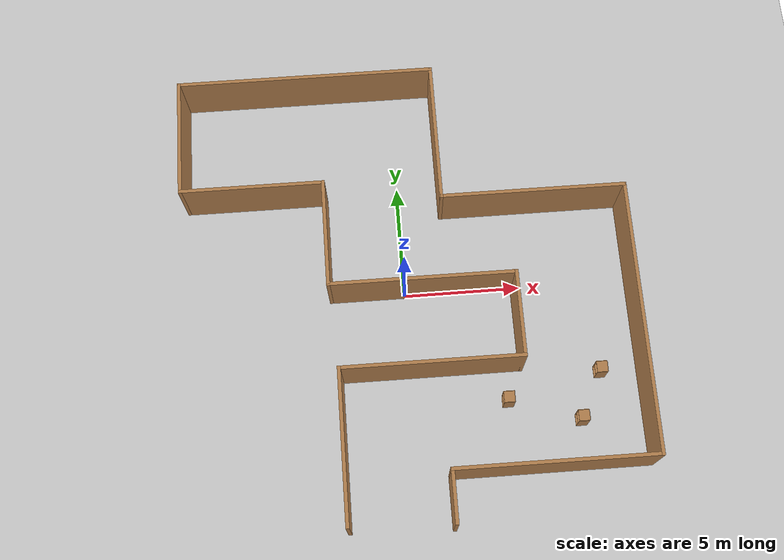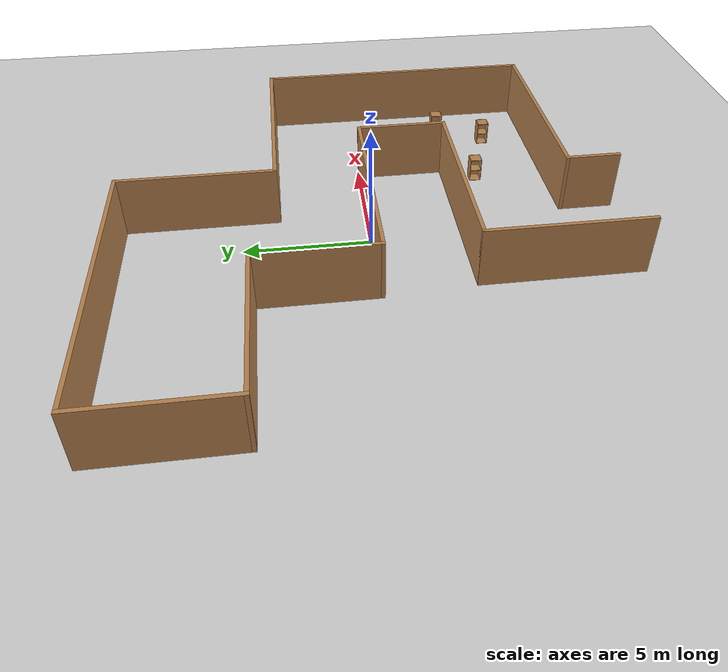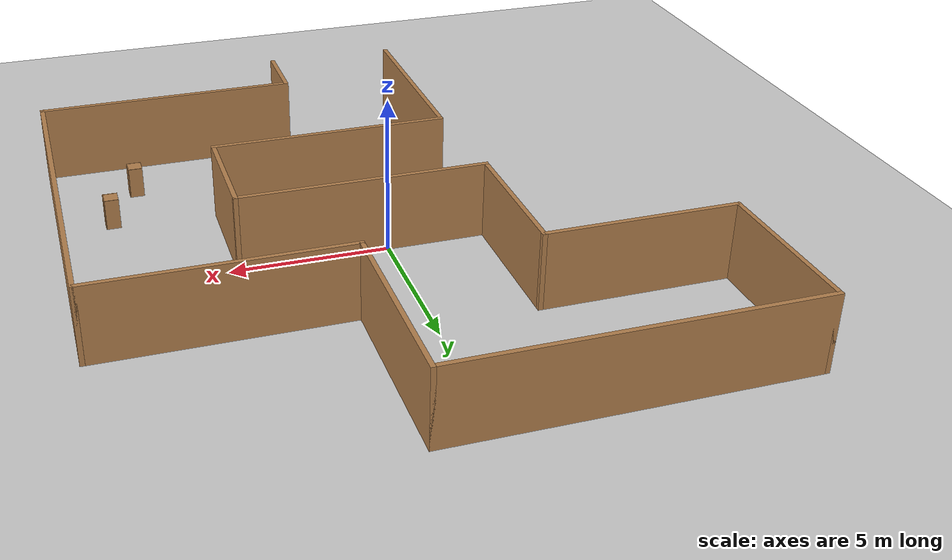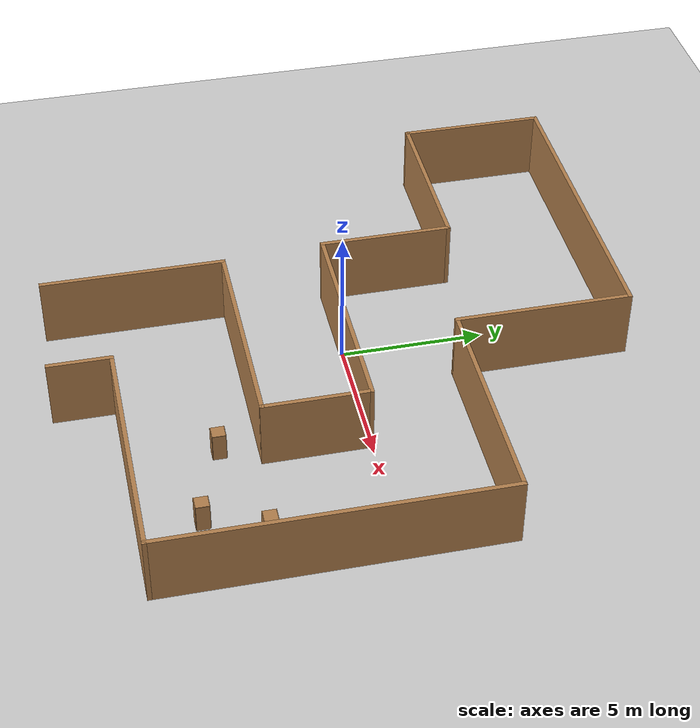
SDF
<sdf version="1.6">
 <world name="default">
  <light name="sun" type="directional">
   <pose>0 0 10 0 -0 0</pose>
   <diffuse>0.8 0.8 0.8 1</diffuse>
   <specular>0.2 0.2 0.2 1</specular>
   <attenuation>
    <range>1000</range>
    <constant>0.9</constant>
    <linear>0.01</linear>
    <quadratic>0.001</quadratic>
   </attenuation>
   <direction>-0.5 0.1 -0.9</direction>
  </light>
  <model name="ground_plane">
   <static>1</static>
   <link name="link">
    <collision name="collision">
     <geometry><plane><normal>0 0 1</normal><size>100 100</size></plane></geometry>
     <surface><friction><ode><mu>100</mu><mu2>50</mu2></ode></friction></surface>
    </collision>
    <visual name="visual">
     <cast_shadows>0</cast_shadows>
     <geometry><plane><normal>0 0 1</normal><size>100 100</size></plane></geometry>
     <material>
      <script><uri>file://media/materials/scripts/gazebo.material</uri><name>Gazebo/Grey</name></script>
     </material>
    </visual>
   </link>
  </model>
  <gravity>0 0 -9.8</gravity>
  <magnetic_field>6e-06 2.3e-05 -4.2e-05</magnetic_field>
  <atmosphere type="adiabatic"/>
  <physics name="default_physics" default="0" type="ode">
   <max_step_size>0.001</max_step_size>
   <real_time_factor>1</real_time_factor>
   <real_time_update_rate>1000</real_time_update_rate>
  </physics>
  <scene><ambient>0.4 0.4 0.4 1</ambient><background>0.7 0.7 0.7 1</background><shadows>1</shadows></scene>
  <spherical_coordinates>
   <surface_model>EARTH_WGS84</surface_model>
   <latitude_deg>0</latitude_deg>
   <longitude_deg>0</longitude_deg>
   <elevation>0</elevation>
   <heading_deg>0</heading_deg>
  </spherical_coordinates>
  <model name="gazebo_course_2_easy">
   <pose>0.197912 -0.23554 0 0 -0 0</pose>
   <link name="Wall_10">
    <collision name="Wall_10_Collision">
     <geometry><box><size>7.75 0.15 2.5</size></box></geometry>
     <pose>0 0 1.25 0 -0 0</pose>
    </collision>
    <visual name="Wall_10_Visual">
     <pose>0 0 1.25 0 -0 0</pose>
     <geometry><box><size>7.75 0.15 2.5</size></box></geometry>
     <material>
      <script><uri>file://media/materials/scripts/gazebo.material</uri><name>Gazebo/Wood</name></script>
      <ambient>1 1 1 1</ambient>
     </material>
     <meta><layer>0</layer></meta>
    </visual>
    <pose>0.675 -3.4 0 0 -0 0</pose>
   </link>
   <link name="Wall_11">
    <collision name="Wall_11_Collision">
     <geometry><box><size>3.75 0.15 2.5</size></box></geometry>
     <pose>0 0 1.25 0 -0 0</pose>
    </collision>
    <visual name="Wall_11_Visual">
     <pose>0 0 1.25 0 -0 0</pose>
     <geometry><box><size>3.75 0.15 2.5</size></box></geometry>
     <material>
      <script><uri>file://media/materials/scripts/gazebo.material</uri><name>Gazebo/Wood</name></script>
      <ambient>1 1 1 1</ambient>
     </material>
     <meta><layer>0</layer></meta>
    </visual>
    <pose>4.475 -1.6 0 0 -0 1.5708</pose>
   </link>
   <link name="Wall_12">
    <collision name="Wall_12_Collision">
     <geometry><box><size>8 0.15 2.5</size></box></geometry>
     <pose>0 0 1.25 0 -0 0</pose>
    </collision>
    <visual name="Wall_12_Visual">
     <pose>0 0 1.25 0 -0 0</pose>
     <geometry><box><size>8 0.15 2.5</size></box></geometry>
     <material>
      <script><uri>file://media/materials/scripts/gazebo.material</uri><name>Gazebo/Wood</name></script>
      <ambient>1 1 1 1</ambient>
     </material>
     <meta><layer>0</layer></meta>
    </visual>
    <pose>0.55 0.2 0 0 -0 3.14159</pose>
   </link>
   <link name="Wall_13">
    <collision name="Wall_13_Collision">
     <geometry><box><size>4.75 0.15 2.5</size></box></geometry>
     <pose>0 0 1.25 0 -0 0</pose>
    </collision>
    <visual name="Wall_13_Visual">
     <pose>0 0 1.25 0 -0 0</pose>
     <geometry><box><size>4.75 0.15 2.5</size></box></geometry>
     <material>
      <script><uri>file://media/materials/scripts/gazebo.material</uri><name>Gazebo/Wood</name></script>
      <ambient>1 1 1 1</ambient>
     </material>
     <meta><layer>0</layer></meta>
    </visual>
    <pose>-3.375 2.5 0 0 -0 1.5708</pose>
   </link>
   <link name="Wall_14">
    <collision name="Wall_14_Collision">
     <geometry><box><size>6.25 0.15 2.5</size></box></geometry>
     <pose>0 0 1.25 0 -0 0</pose>
    </collision>
    <visual name="Wall_14_Visual">
     <pose>0 0 1.25 0 -0 0</pose>
     <geometry><box><size>6.25 0.15 2.5</size></box></geometry>
     <material>
      <script><uri>file://media/materials/scripts/gazebo.material</uri><name>Gazebo/Wood</name></script>
      <ambient>1 1 1 1</ambient>
     </material>
     <meta><layer>0</layer></meta>
    </visual>
    <pose>-6.425 4.8 0 0 -0 3.14159</pose>
   </link>
   <link name="Wall_15">
    <collision name="Wall_15_Collision">
     <geometry><box><size>5.25 0.15 2.5</size></box></geometry>
     <pose>0 0 1.25 0 -0 0</pose>
    </collision>
    <visual name="Wall_15_Visual">
     <pose>0 0 1.25 0 -0 0</pose>
     <geometry><box><size>5.25 0.15 2.5</size></box></geometry>
     <material>
      <script><uri>file://media/materials/scripts/gazebo.material</uri><name>Gazebo/Wood</name></script>
      <ambient>1 1 1 1</ambient>
     </material>
     <meta><layer>0</layer></meta>
    </visual>
    <pose>-9.475 7.35 0 0 -0 1.5708</pose>
   </link>
   <link name="Wall_16">
    <collision name="Wall_16_Collision">
     <geometry><box><size>11.25 0.15 2.5</size></box></geometry>
     <pose>0 0 1.25 0 -0 0</pose>
    </collision>
    <visual name="Wall_16_Visual">
     <pose>0 0 1.25 0 -0 0</pose>
     <geometry><box><size>11.25 0.15 2.5</size></box></geometry>
     <material>
      <script><uri>file://media/materials/scripts/gazebo.material</uri><name>Gazebo/Wood</name></script>
      <ambient>1 1 1 1</ambient>
     </material>
     <meta><layer>0</layer></meta>
    </visual>
    <pose>-3.925 9.9 0 0 -0 0</pose>
   </link>
   <link name="Wall_17">
    <collision name="Wall_17_Collision">
     <geometry><box><size>6.25 0.15 2.5</size></box></geometry>
     <pose>0 0 1.25 0 -0 0</pose>
    </collision>
    <visual name="Wall_17_Visual">
     <pose>0 0 1.25 0 -0 0</pose>
     <geometry><box><size>6.25 0.15 2.5</size></box></geometry>
     <material>
      <script><uri>file://media/materials/scripts/gazebo.material</uri><name>Gazebo/Wood</name></script>
      <ambient>1 1 1 1</ambient>
     </material>
     <meta><layer>0</layer></meta>
    </visual>
    <pose>1.625 6.85 0 0 -0 -1.5708</pose>
   </link>
   <link name="Wall_18">
    <collision name="Wall_18_Collision">
     <geometry><box><size>8 0.15 2.5</size></box></geometry>
     <pose>0 0 1.25 0 -0 0</pose>
    </collision>
    <visual name="Wall_18_Visual">
     <pose>0 0 1.25 0 -0 0</pose>
     <geometry><box><size>8 0.15 2.5</size></box></geometry>
     <material>
      <script><uri>file://media/materials/scripts/gazebo.material</uri><name>Gazebo/Wood</name></script>
      <ambient>1 1 1 1</ambient>
     </material>
     <meta><layer>0</layer></meta>
    </visual>
    <pose>5.55 3.8 0 0 -0 0</pose>
   </link>
   <link name="Wall_19">
    <collision name="Wall_19_Collision">
     <geometry><box><size>11.75 0.15 2.5</size></box></geometry>
     <pose>0 0 1.25 0 -0 0</pose>
    </collision>
    <visual name="Wall_19_Visual">
     <pose>0 0 1.25 0 -0 0</pose>
     <geometry><box><size>11.75 0.15 2.5</size></box></geometry>
     <material>
      <script><uri>file://media/materials/scripts/gazebo.material</uri><name>Gazebo/Wood</name></script>
      <ambient>1 1 1 1</ambient>
     </material>
     <meta><layer>0</layer></meta>
    </visual>
    <pose>9.475 -2 0 0 -0 -1.5708</pose>
   </link>
   <link name="Wall_20">
    <collision name="Wall_20_Collision">
     <geometry><box><size>8.5 0.15 2.5</size></box></geometry>
     <pose>0 0 1.25 0 -0 0</pose>
    </collision>
    <visual name="Wall_20_Visual">
     <pose>0 0 1.25 0 -0 0</pose>
     <geometry><box><size>8.5 0.15 2.5</size></box></geometry>
     <material>
      <script><uri>file://media/materials/scripts/gazebo.material</uri><name>Gazebo/Wood</name></script>
      <ambient>1 1 1 1</ambient>
     </material>
     <meta><layer>0</layer></meta>
    </visual>
    <pose>5.3 -7.8 0 0 -0 3.14159</pose>
   </link>
   <link name="Wall_21">
    <collision name="Wall_21_Collision">
     <geometry><box><size>2.25 0.15 2.5</size></box></geometry>
     <pose>0 0 1.25 0 -0 0</pose>
    </collision>
    <visual name="Wall_21_Visual">
     <pose>0 0 1.25 0 -0 0</pose>
     <geometry><box><size>2.25 0.15 2.5</size></box></geometry>
     <material>
      <script><uri>file://media/materials/scripts/gazebo.material</uri><name>Gazebo/Wood</name></script>
      <ambient>1 1 1 1</ambient>
     </material>
     <meta><layer>0</layer></meta>
    </visual>
    <pose>1.125 -8.85 0 0 -0 -1.5708</pose>
   </link>
   <link name="Wall_9">
    <collision name="Wall_9_Collision">
     <geometry><box><size>6.5 0.15 2.5</size></box></geometry>
     <pose>0 0 1.25 0 -0 0</pose>
    </collision>
    <visual name="Wall_9_Visual">
     <pose>0 0 1.25 0 -0 0</pose>
     <geometry><box><size>6.5 0.15 2.5</size></box></geometry>
     <material>
      <script><uri>file://media/materials/scripts/gazebo.material</uri><name>Gazebo/Wood</name></script>
      <ambient>1 1 1 1</ambient>
     </material>
     <meta><layer>0</layer></meta>
    </visual>
    <pose>-3.125 -6.575 0 0 -0 1.5708</pose>
   </link>
   <static>1</static>
  </model>
  <audio><device>default</device></audio>
  <model name="cabinet">
   <static>1</static>
   <link name="cabinet_bottom_plate">
    <inertial>
     <pose>0 0 -1 0 -0 0</pose>
     <inertia><ixx>2.05</ixx><ixy>0</ixy><ixz>0</ixz><iyy>2.05</iyy><iyz>0</iyz><izz>2.05</izz></inertia>
     <mass>25</mass>
    </inertial>
    <collision name="cabinet_bottom_plate_geom">
     <pose>0 0 0.01 0 -0 0</pose>
     <geometry><box><size>0.45 0.45 0.02</size></box></geometry>
    </collision>
    <visual name="cabinet_bottom_plate_geom_visual">
     <pose>0 0 0.01 0 -0 0</pose>
     <geometry><box><size>0.45 0.45 0.02</size></box></geometry>
     <material>
      <script><uri>file://media/materials/scripts/gazebo.material</uri><name>Gazebo/Wood</name></script>
     </material>
    </visual>
    <collision name="cabinet_bottom_plate_geom_cabinet_back_plate">
     <pose>0.235 0 0.51 0 -0 0</pose>
     <geometry><box><size>0.02 0.45 1.02</size></box></geometry>
    </collision>
    <visual name="cabinet_bottom_plate_geom_cabinet_back_plate_visual">
     <pose>0.235 0 0.51 0 -0 0</pose>
     <geometry><box><size>0.02 0.45 1.02</size></box></geometry>
     <material>
      <script><uri>file://media/materials/scripts/gazebo.material</uri><name>Gazebo/Wood</name></script>
     </material>
    </visual>
    <collision name="cabinet_bottom_plate_geom_cabinet_left_plate">
     <pose>0 0.235 0.51 0 -0 0</pose>
     <geometry><box><size>0.45 0.02 1.02</size></box></geometry>
    </collision>
    <visual name="cabinet_bottom_plate_geom_cabinet_left_plate_visual">
     <pose>0 0.235 0.51 0 -0 0</pose>
     <geometry><box><size>0.45 0.02 1.02</size></box></geometry>
     <material>
      <script><uri>file://media/materials/scripts/gazebo.material</uri><name>Gazebo/Wood</name></script>
     </material>
    </visual>
    <collision name="cabinet_bottom_plate_geom_cabinet_middle_plate">
     <pose>0 0 0.51 0 -0 0</pose>
     <geometry><box><size>0.45 0.45 0.02</size></box></geometry>
    </collision>
    <visual name="cabinet_bottom_plate_geom_cabinet_middle_plate_visual">
     <pose>0 0 0.51 0 -0 0</pose>
     <geometry><box><size>0.45 0.45 0.02</size></box></geometry>
     <material>
      <script><uri>file://media/materials/scripts/gazebo.material</uri><name>Gazebo/Wood</name></script>
     </material>
    </visual>
    <collision name="cabinet_bottom_plate_geom_cabinet_right_plate">
     <pose>0 -0.235 0.51 0 -0 0</pose>
     <geometry><box><size>0.45 0.02 1.02</size></box></geometry>
    </collision>
    <visual name="cabinet_bottom_plate_geom_cabinet_right_plate_visual">
     <pose>0 -0.235 0.51 0 -0 0</pose>
     <geometry><box><size>0.45 0.02 1.02</size></box></geometry>
     <material>
      <script><uri>file://media/materials/scripts/gazebo.material</uri><name>Gazebo/Wood</name></script>
     </material>
    </visual>
    <collision name="cabinet_bottom_plate_geom_cabinet_top_plate">
     <pose>0 0 1.01 0 -0 0</pose>
     <geometry><box><size>0.45 0.45 0.02</size></box></geometry>
    </collision>
    <visual name="cabinet_bottom_plate_geom_cabinet_top_plate_visual">
     <pose>0 0 1.01 0 -0 0</pose>
     <geometry><box><size>0.45 0.45 0.02</size></box></geometry>
     <material>
      <script><uri>file://media/materials/scripts/gazebo.material</uri><name>Gazebo/Wood</name></script>
     </material>
    </visual>
   </link>
   <pose>4 -5 0 0 -0 0</pose>
  </model>
  <model name="cabinet_0">
   <static>1</static>
   <link name="cabinet_bottom_plate">
    <inertial>
     <pose>0 0 -1 0 -0 0</pose>
     <inertia><ixx>2.05</ixx><ixy>0</ixy><ixz>0</ixz><iyy>2.05</iyy><iyz>0</iyz><izz>2.05</izz></inertia>
     <mass>25</mass>
    </inertial>
    <collision name="cabinet_bottom_plate_geom">
     <pose>0 0 0.01 0 -0 0</pose>
     <geometry><box><size>0.45 0.45 0.02</size></box></geometry>
    </collision>
    <visual name="cabinet_bottom_plate_geom_visual">
     <pose>0 0 0.01 0 -0 0</pose>
     <geometry><box><size>0.45 0.45 0.02</size></box></geometry>
     <material>
      <script><uri>file://media/materials/scripts/gazebo.material</uri><name>Gazebo/Wood</name></script>
     </material>
    </visual>
    <collision name="cabinet_bottom_plate_geom_cabinet_back_plate">
     <pose>0.235 0 0.51 0 -0 0</pose>
     <geometry><box><size>0.02 0.45 1.02</size></box></geometry>
    </collision>
    <visual name="cabinet_bottom_plate_geom_cabinet_back_plate_visual">
     <pose>0.235 0 0.51 0 -0 0</pose>
     <geometry><box><size>0.02 0.45 1.02</size></box></geometry>
     <material>
      <script><uri>file://media/materials/scripts/gazebo.material</uri><name>Gazebo/Wood</name></script>
     </material>
    </visual>
    <collision name="cabinet_bottom_plate_geom_cabinet_left_plate">
     <pose>0 0.235 0.51 0 -0 0</pose>
     <geometry><box><size>0.45 0.02 1.02</size></box></geometry>
    </collision>
    <visual name="cabinet_bottom_plate_geom_cabinet_left_plate_visual">
     <pose>0 0.235 0.51 0 -0 0</pose>
     <geometry><box><size>0.45 0.02 1.02</size></box></geometry>
     <material>
      <script><uri>file://media/materials/scripts/gazebo.material</uri><name>Gazebo/Wood</name></script>
     </material>
    </visual>
    <collision name="cabinet_bottom_plate_geom_cabinet_middle_plate">
     <pose>0 0 0.51 0 -0 0</pose>
     <geometry><box><size>0.45 0.45 0.02</size></box></geometry>
    </collision>
    <visual name="cabinet_bottom_plate_geom_cabinet_middle_plate_visual">
     <pose>0 0 0.51 0 -0 0</pose>
     <geometry><box><size>0.45 0.45 0.02</size></box></geometry>
     <material>
      <script><uri>file://media/materials/scripts/gazebo.material</uri><name>Gazebo/Wood</name></script>
     </material>
    </visual>
    <collision name="cabinet_bottom_plate_geom_cabinet_right_plate">
     <pose>0 -0.235 0.51 0 -0 0</pose>
     <geometry><box><size>0.45 0.02 1.02</size></box></geometry>
    </collision>
    <visual name="cabinet_bottom_plate_geom_cabinet_right_plate_visual">
     <pose>0 -0.235 0.51 0 -0 0</pose>
     <geometry><box><size>0.45 0.02 1.02</size></box></geometry>
     <material>
      <script><uri>file://media/materials/scripts/gazebo.material</uri><name>Gazebo/Wood</name></script>
     </material>
    </visual>
    <collision name="cabinet_bottom_plate_geom_cabinet_top_plate">
     <pose>0 0 1.01 0 -0 0</pose>
     <geometry><box><size>0.45 0.45 0.02</size></box></geometry>
    </collision>
    <visual name="cabinet_bottom_plate_geom_cabinet_top_plate_visual">
     <pose>0 0 1.01 0 -0 0</pose>
     <geometry><box><size>0.45 0.45 0.02</size></box></geometry>
     <material>
      <script><uri>file://media/materials/scripts/gazebo.material</uri><name>Gazebo/Wood</name></script>
     </material>
    </visual>
   </link>
   <pose>7 -6 0 0 -0 0</pose>
  </model>
  <model name="cabinet_1">
   <static>1</static>
   <link name="cabinet_bottom_plate">
    <inertial>
     <pose>0 0 -1 0 -0 0</pose>
     <inertia><ixx>2.05</ixx><ixy>0</ixy><ixz>0</ixz><iyy>2.05</iyy><iyz>0</iyz><izz>2.05</izz></inertia>
     <mass>25</mass>
    </inertial>
    <collision name="cabinet_bottom_plate_geom">
     <pose>0 0 0.01 0 -0 0</pose>
     <geometry><box><size>0.45 0.45 0.02</size></box></geometry>
    </collision>
    <visual name="cabinet_bottom_plate_geom_visual">
     <pose>0 0 0.01 0 -0 0</pose>
     <geometry><box><size>0.45 0.45 0.02</size></box></geometry>
     <material>
      <script><uri>file://media/materials/scripts/gazebo.material</uri><name>Gazebo/Wood</name></script>
     </material>
    </visual>
    <collision name="cabinet_bottom_plate_geom_cabinet_back_plate">
     <pose>0.235 0 0.51 0 -0 0</pose>
     <geometry><box><size>0.02 0.45 1.02</size></box></geometry>
    </collision>
    <visual name="cabinet_bottom_plate_geom_cabinet_back_plate_visual">
     <pose>0.235 0 0.51 0 -0 0</pose>
     <geometry><box><size>0.02 0.45 1.02</size></box></geometry>
     <material>
      <script><uri>file://media/materials/scripts/gazebo.material</uri><name>Gazebo/Wood</name></script>
     </material>
    </visual>
    <collision name="cabinet_bottom_plate_geom_cabinet_left_plate">
     <pose>0 0.235 0.51 0 -0 0</pose>
     <geometry><box><size>0.45 0.02 1.02</size></box></geometry>
    </collision>
    <visual name="cabinet_bottom_plate_geom_cabinet_left_plate_visual">
     <pose>0 0.235 0.51 0 -0 0</pose>
     <geometry><box><size>0.45 0.02 1.02</size></box></geometry>
     <material>
      <script><uri>file://media/materials/scripts/gazebo.material</uri><name>Gazebo/Wood</name></script>
     </material>
    </visual>
    <collision name="cabinet_bottom_plate_geom_cabinet_middle_plate">
     <pose>0 0 0.51 0 -0 0</pose>
     <geometry><box><size>0.45 0.45 0.02</size></box></geometry>
    </collision>
    <visual name="cabinet_bottom_plate_geom_cabinet_middle_plate_visual">
     <pose>0 0 0.51 0 -0 0</pose>
     <geometry><box><size>0.45 0.45 0.02</size></box></geometry>
     <material>
      <script><uri>file://media/materials/scripts/gazebo.material</uri><name>Gazebo/Wood</name></script>
     </material>
    </visual>
    <collision name="cabinet_bottom_plate_geom_cabinet_right_plate">
     <pose>0 -0.235 0.51 0 -0 0</pose>
     <geometry><box><size>0.45 0.02 1.02</size></box></geometry>
    </collision>
    <visual name="cabinet_bottom_plate_geom_cabinet_right_plate_visual">
     <pose>0 -0.235 0.51 0 -0 0</pose>
     <geometry><box><size>0.45 0.02 1.02</size></box></geometry>
     <material>
      <script><uri>file://media/materials/scripts/gazebo.material</uri><name>Gazebo/Wood</name></script>
     </material>
    </visual>
    <collision name="cabinet_bottom_plate_geom_cabinet_top_plate">
     <pose>0 0 1.01 0 -0 0</pose>
     <geometry><box><size>0.45 0.45 0.02</size></box></geometry>
    </collision>
    <visual name="cabinet_bottom_plate_geom_cabinet_top_plate_visual">
     <pose>0 0 1.01 0 -0 0</pose>
     <geometry><box><size>0.45 0.45 0.02</size></box></geometry>
     <material>
      <script><uri>file://media/materials/scripts/gazebo.material</uri><name>Gazebo/Wood</name></script>
     </material>
    </visual>
   </link>
   <pose>8 -4 0 0 -0 0</pose>
  </model>
 </world>
</sdf>
